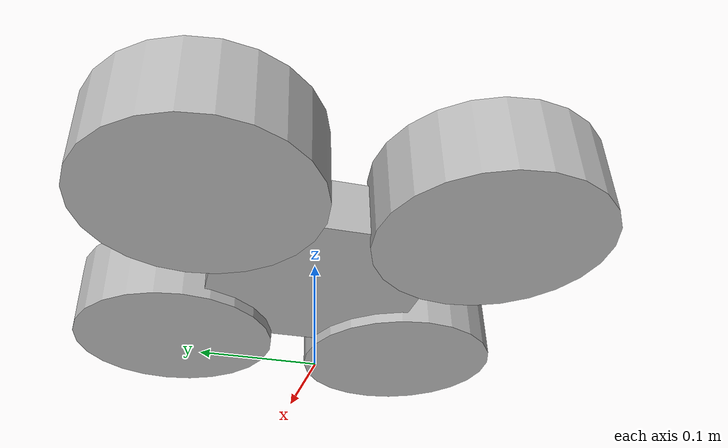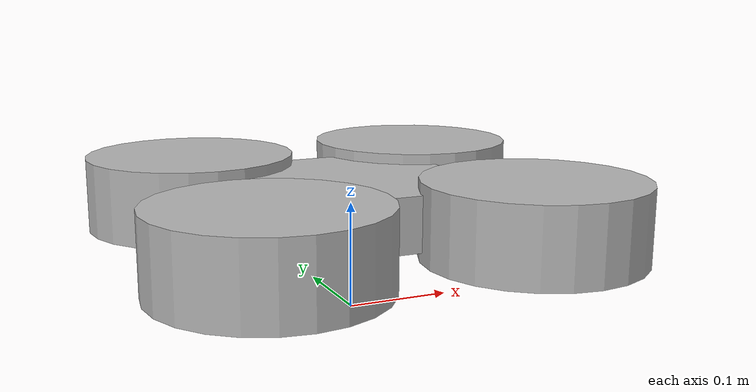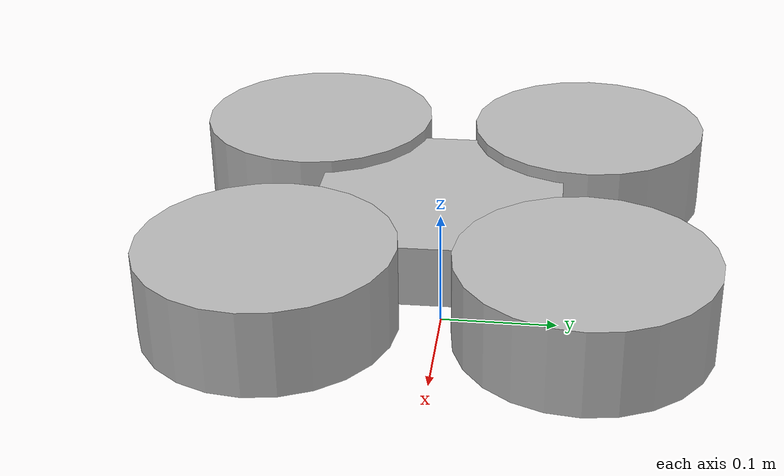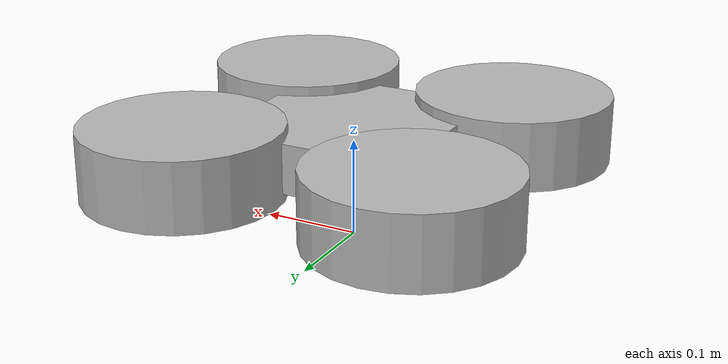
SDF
<?xml version='1.0'?>
<sdf version='1.4'>
	<model name="paparazzi_uav">
		<pose>0 0 .1 0 0 0</pose>

		<link name="chassis">
			<inertial><!-- Taken from Paparazzi's ARDrone model for JSBsim -->
				<mass>0.4</mass>
				<inertia>
					<ixx> 0.005 </ixx>
					<iyy> 0.005 </iyy>
					<izz> 0.010 </izz>
					<ixy> 0. </ixy>
					<ixz> 0. </ixz>
					<iyz> 0. </iyz>
				</inertia>
			</inertial>

			<collision name="collision">
				<geometry>
					<box>
						<size>.4 .4 .05</size>
					</box>
				</geometry>
			</collision>

			<visual name="visual">
				<geometry>
					<box>
						<size>.2 .2 .05</size>
					</box>
				</geometry>
			</visual>

			<sensor name="contactsensor" type="contact">
				<contact>
					<collision>collision</collision>
				</contact>
			</sensor>
		</link>

<!-- MOTORS -->

		<link name="nw_motor">
			<pose>0.12 0.12 0 0 0 0</pose>
			<inertial>
				<mass>0.01</mass>
				<inertia>
					<ixx>.0001</ixx>
					<iyy>.0001</iyy>
					<izz>.0001</izz>
					<ixy>0</ixy>
					<iyz>0</iyz>
					<ixz>0</ixz>
				</inertia>
			</inertial>
			<visual name="visual">
				<geometry>
					<cylinder>
						<radius>0.10</radius>
						<length>.07</length>
					</cylinder>
				</geometry>
			</visual>
		</link>

		<joint type="fixed" name="nw_motor_joint">
			<parent>chassis</parent>
			<child>nw_motor</child>
		</joint>

		<link name="se_motor">
			<pose>-0.12 -0.12 0 0 0 0</pose>
			<inertial>
				<mass>0.01</mass>
				<inertia>
					<ixx>.0001</ixx>
					<iyy>.0001</iyy>
					<izz>.0001</izz>
					<ixy>0</ixy>
					<iyz>0</iyz>
					<ixz>0</ixz>
				</inertia>
			</inertial>
			<visual name="visual">
				<geometry>
					<cylinder>
						<radius>0.10</radius>
						<length>.07</length>
					</cylinder>
				</geometry>
			</visual>
		</link>

		<joint type="fixed" name="se_motor_joint">
			<parent>chassis</parent>
			<child>se_motor</child>
		</joint>

		<link name="ne_motor">
			<pose>0.12 -0.12 0 0 0 0</pose>
			<inertial>
				<mass>0.01</mass>
				<inertia>
					<ixx>.0001</ixx>
					<iyy>.0001</iyy>
					<izz>.0001</izz>
					<ixy>0</ixy>
					<iyz>0</iyz>
					<ixz>0</ixz>
				</inertia>
			</inertial>
			<visual name="visual">
				<geometry>
					<cylinder>
						<radius>0.10</radius>
						<length>.07</length>
					</cylinder>
				</geometry>
			</visual>
		</link>

		<joint type="fixed" name="ne_motor_joint">
			<parent>chassis</parent>
			<child>ne_motor</child>
		</joint>

		<link name="sw_motor">
			<pose>-0.12 0.12 0 0 0 0</pose>
			<inertial>
				<mass>0.01</mass>
				<inertia>
					<ixx>.0001</ixx>
					<iyy>.0001</iyy>
					<izz>.0001</izz>
					<ixy>0</ixy>
					<iyz>0</iyz>
					<ixz>0</ixz>
				</inertia>
			</inertial>
			<visual name="visual">
				<geometry>
					<cylinder>
						<radius>0.10</radius>
						<length>.07</length>
					</cylinder>
				</geometry>
			</visual>
		</link>

		<joint type="fixed" name="sw_motor_joint">
			<parent>chassis</parent>
			<child>sw_motor</child>
		</joint>

		<!-- CAMERAS -->

		<link name="front_camera">
			<pose>0.15 0 0 0 0 0</pose>
			<inertial>
				<mass>0.001</mass>
				<inertia>
					<ixx>.0001</ixx>
					<iyy>.0001</iyy>
					<izz>.0001</izz>
					<ixy>0</ixy>
					<iyz>0</iyz>
					<ixz>0</ixz>
				</inertia>
			</inertial>
			<sensor type="camera" name="front_camera">
				<update_rate>30.0</update_rate>
				<camera name="front_camera">
					<horizontal_fov>1.3962634</horizontal_fov>
					<image>
						<width>1280</width>
						<height>720</height>
						<format>R8G8B8</format>
					</image>
					<clip>
						<near>0.02</near>
						<far>300</far>
					</clip>
					<noise>
						<type>gaussian</type>
						<!-- Noise is sampled independently per pixel on each frame. That pixel's
							noise value is added to each of its color channels, which at that point lie
							in the range [0,1]. -->
						<mean>0.0</mean>
						<stddev>0.007</stddev>
					</noise>
				</camera>
			</sensor>
		</link>

		<joint name="front_camera_joint" type="fixed">
			<parent>chassis</parent>
			<child>front_camera</child>
		</joint>

		<link name="bottom_camera">
			<pose>0 0 -.03 0 1.57 0</pose>
			<inertial>
				<mass>0.001</mass>
				<inertia>
					<ixx>.0001</ixx>
					<iyy>.0001</iyy>
					<izz>.0001</izz>
					<ixy>0</ixy>
					<iyz>0</iyz>
					<ixz>0</ixz>
				</inertia>
			</inertial>
			<sensor type="camera" name="bottom_camera">
				<update_rate>30.0</update_rate>
				<camera name="bottom_camera">
					<horizontal_fov>1.3962634</horizontal_fov>
					<image>
						<width>320</width>
						<height>240</height>
						<format>R8G8B8</format>
					</image>
					<clip>
						<near>0.02</near>
						<far>300</far>
					</clip>
					<noise>
						<type>gaussian</type>
						<!-- Noise is sampled independently per pixel on each frame. That pixel's
							noise value is added to each of its color channels, which at that point lie
							in the range [0,1]. -->
						<mean>0.0</mean>
						<stddev>0.007</stddev>
					</noise>
				</camera>
			</sensor>
		</link>

		<joint name="bottom_camera_joint" type="fixed">
			<parent>chassis</parent>
			<child>bottom_camera</child>
		</joint>

<!-- RANGE SENSORS -->

    <include>
      <uri>model://range_sensors</uri>
      <pose>0 0 0 0 0 0</pose>
    </include>

		<joint name="range_sensor_joint" type="fixed">
			<parent>chassis</parent>
			<child>range_sensors::base</child>
		</joint>

<!-- STEREOCAMERA -->

    <include>
      <uri>model://stereo_camera</uri>
      <pose>0 0 0 0 0 0</pose>
    </include>

		<joint name="stereo_camera_joint" type="fixed">
			<parent>chassis</parent>
			<child>stereo_camera::base</child>
		</joint>

	</model>
</sdf>

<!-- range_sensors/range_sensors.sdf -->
<sdf version='1.4'>
	<model name="range_sensors">

		<link name="base">
			<inertial><!-- Taken from Paparazzi's ARDrone model for JSBsim -->
				<mass>0.001</mass>
				<inertia>
					<ixx> 0.005 </ixx>
					<iyy> 0.005 </iyy>
					<izz> 0.010 </izz>
					<ixy> 0. </ixy>
					<ixz> 0. </ixz>
					<iyz> 0. </iyz>
				</inertia>
			</inertial>

			<collision name="collision">
				<geometry>
					<box>
						<size>.4 .4 .05</size>
					</box>
				</geometry>
			</collision>

		</link>

<!-- RANGE SENSORS -->

    <link name="down_range_sensor">
			<pose>0.0 0 0 0 1.57 0</pose>
			<inertial>
				<mass>0.001</mass>
				<inertia>
					<ixx>.0001</ixx>
					<iyy>.0001</iyy>
					<izz>.0001</izz>
					<ixy>0</ixy>
					<iyz>0</iyz>
					<ixz>0</ixz>
				</inertia>
			</inertial>
      <sensor type= "ray" name="down_range_sensor">
        <visualize>true</visualize>
        <update_rate>30</update_rate>
					<ray>
						<range>
							<min>0.05</min>
							<max>2</max>
							<resolution>0.02</resolution>
						</range>
					</ray>
      </sensor>
    </link>

		<joint name="down_range_sensor_joint" type="fixed">
			<parent>base</parent>
			<child>down_range_sensor</child>
		</joint>

    <link name="up_range_sensor">
			<pose>0.0 0 0 0 -1.57 0</pose>
			<inertial>
				<mass>0.001</mass>
				<inertia>
					<ixx>.0001</ixx>
					<iyy>.0001</iyy>
					<izz>.0001</izz>
					<ixy>0</ixy>
					<iyz>0</iyz>
					<ixz>0</ixz>
				</inertia>
			</inertial>
      <sensor type= "ray" name="up_range_sensor">
        <visualize>true</visualize>
        <update_rate>30</update_rate>
					<ray>
						<range>
							<min>0.05</min>
							<max>2</max>
							<resolution>0.02</resolution>
						</range>
					</ray>
      </sensor>
    </link>

		<joint name="up_range_sensor_joint" type="fixed">
			<parent>base</parent>
			<child>up_range_sensor</child>
		</joint>

    <link name="left_range_sensor">
			<pose>0.0 0 0.15 0 0 1.57</pose>
			<inertial>
				<mass>0.001</mass>
				<inertia>
					<ixx>.0001</ixx>
					<iyy>.0001</iyy>
					<izz>.0001</izz>
					<ixy>0</ixy>
					<iyz>0</iyz>
					<ixz>0</ixz>
				</inertia>
			</inertial>
      <sensor type= "ray" name="left_range_sensor">
        <visualize>true</visualize>
        <update_rate>30</update_rate>
					<ray>
						<range>
							<min>0.05</min>
							<max>2</max>
							<resolution>0.02</resolution>
						</range>
					</ray>
      </sensor>
    </link>

		<joint name="left_range_sensor_joint" type="fixed">
			<parent>base</parent>
			<child>left_range_sensor</child>
		</joint>

    <link name="right_range_sensor">
			<pose>0.0 0 0.15 0 0 -1.57</pose>
			<inertial>
				<mass>0.001</mass>
				<inertia>
					<ixx>.0001</ixx>
					<iyy>.0001</iyy>
					<izz>.0001</izz>
					<ixy>0</ixy>
					<iyz>0</iyz>
					<ixz>0</ixz>
				</inertia>
			</inertial>
      <sensor type= "ray" name="right_range_sensor">
        <visualize>true</visualize>
        <update_rate>30</update_rate>
					<ray>
						<range>
							<min>0.05</min>
							<max>2</max>
							<resolution>0.02</resolution>
						</range>
					</ray>
      </sensor>
    </link>

		<joint name="right_range_sensor_joint" type="fixed">
			<parent>base</parent>
			<child>right_range_sensor</child>
		</joint>

    <link name="front_range_sensor">
			<pose>0.0 0 0.15 0 0 0</pose>
			<inertial>
				<mass>0.001</mass>
				<inertia>
					<ixx>.0001</ixx>
					<iyy>.0001</iyy>
					<izz>.0001</izz>
					<ixy>0</ixy>
					<iyz>0</iyz>
					<ixz>0</ixz>
				</inertia>
			</inertial>
      <sensor type= "ray" name="front_range_sensor">
        <visualize>true</visualize>
        <update_rate>30</update_rate>
					<ray>
						<range>
							<min>0.05</min>
							<max>2</max>
							<resolution>0.02</resolution>
						</range>
					</ray>
      </sensor>
    </link>

		<joint name="front_range_sensor_joint" type="fixed">
			<parent>base</parent>
			<child>front_range_sensor</child>
		</joint>

    <link name="back_range_sensor">
			<pose>0.0 0 0.15 0 0 3.14</pose>
			<inertial>
				<mass>0.001</mass>
				<inertia>
					<ixx>.0001</ixx>
					<iyy>.0001</iyy>
					<izz>.0001</izz>
					<ixy>0</ixy>
					<iyz>0</iyz>
					<ixz>0</ixz>
				</inertia>
			</inertial>
      <sensor type= "ray" name="back_range_sensor">
        <visualize>true</visualize>
        <update_rate>30</update_rate>
					<ray>
						<range>
							<min>0.05</min>
							<max>2</max>
							<resolution>0.02</resolution>
						</range>
					</ray>
      </sensor>
    </link>

		<joint name="back_range_sensor" type="fixed">
			<parent>base</parent>
			<child>back_range_sensor</child>
		</joint>

	</model>
</sdf>

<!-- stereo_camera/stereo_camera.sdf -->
<sdf version='1.4'>
	<model name="stereo_camera">

		<link name="base">
			<inertial><!-- Taken from Paparazzi's ARDrone model for JSBsim -->
				<mass>0.001</mass>
				<inertia>
					<ixx> 0.005 </ixx>
					<iyy> 0.005 </iyy>
					<izz> 0.010 </izz>
					<ixy> 0. </ixy>
					<ixz> 0. </ixz>
					<iyz> 0. </iyz>
				</inertia>
			</inertial>

			<collision name="collision">
				<geometry>
					<box>
						<size>.4 .4 .05</size>
					</box>
				</geometry>
			</collision>

		</link>

<!-- STEREO CAMERA -->
		<link name="stereo_camera">
			<pose>0.15 0 0 0 0 0</pose>
			<inertial>
				<mass>0.001</mass>
				<inertia>
					<ixx>.0001</ixx>
					<iyy>.0001</iyy>
					<izz>.0001</izz>
					<ixy>0</ixy>
					<iyz>0</iyz>
					<ixz>0</ixz>
				</inertia>
			</inertial>
     <sensor type="multicamera" name="stereo_camera">
      <update_rate>25.0</update_rate>
      <camera name="left">
        <pose>0 0.03 0 0 0 0</pose>
        <horizontal_fov>1.001819 </horizontal_fov>
        <image>
						<width>128</width>
						<height>96</height>
          <format>R8G8B8</format>
        </image>
        <clip>
          <near>0.02</near>
          <far>300</far>
        </clip>
        <noise>
          <type>gaussian</type>
          <mean>0.0</mean>
          <stddev>0.02</stddev>
        </noise>
      </camera>
      <camera name="right">
        <pose>0 -0.03 0 0 0 0</pose>
        <horizontal_fov>1.001819 </horizontal_fov>
        <image>
						<width>128</width>
						<height>96</height>
          <format>R8G8B8</format>
        </image>
        <clip>
          <near>0.02</near>
          <far>300</far>
        </clip>
        <noise>
          <type>gaussian</type>
          <mean>0.0</mean>
          <stddev>0.02</stddev>
        </noise>
      </camera>
			</sensor>
		</link>

		<joint name="stereo_camera_joint" type="fixed">
			<parent>base</parent>
			<child>stereo_camera</child>
		</joint>

	</model>
</sdf>
